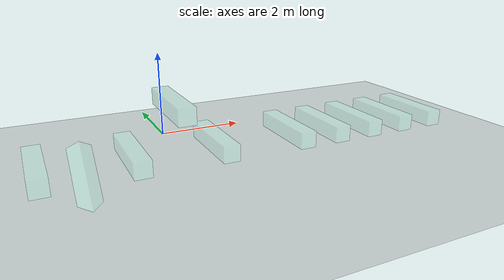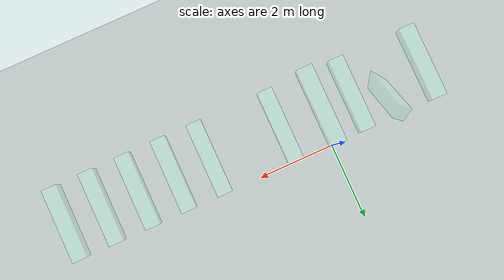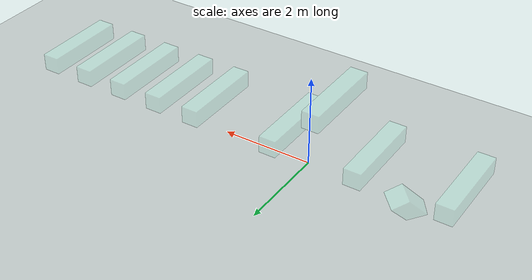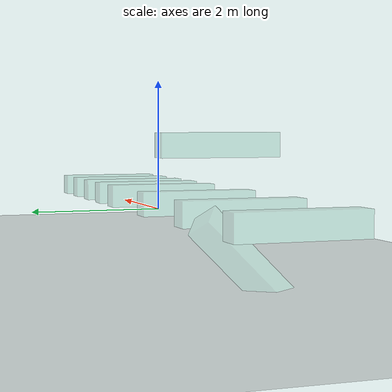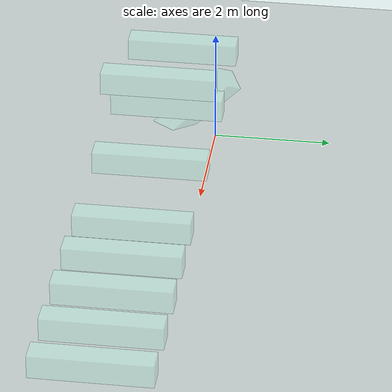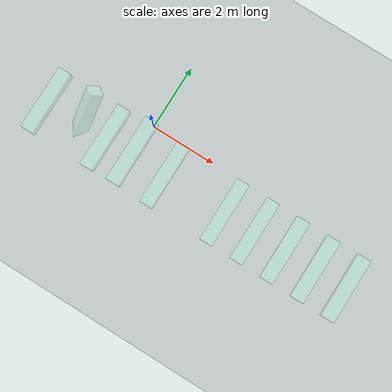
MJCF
<!-- For validating constraint dynamics:

* connect, weld, joint constraints
* collision and joint limits for ball and 1d joints
* solref, solimp
--><mujoco>
  <compiler meshdir="F:/--CodeRepo/--CodeRepo/Research/___Mujoco/mujoco/mujoco/icse27/mujoco_rl_fuzz_2.0/.cache/repos/mjx/mjx/mujoco/mjx/test_data" texturedir="F:/--CodeRepo/--CodeRepo/Research/___Mujoco/mujoco/mujoco/icse27/mujoco_rl_fuzz_2.0/.cache/repos/mjx/mjx/mujoco/mjx/test_data" assetdir="F:/--CodeRepo/--CodeRepo/Research/___Mujoco/mujoco/mujoco/icse27/mujoco_rl_fuzz_2.0/.cache/repos/mjx/mjx/mujoco/mjx/test_data"/><option timestep="0.015" impratio="1.5"/>

  <default>
    <default class="box">
      <geom type="box" size=".2" fromto="0 0 0 0 -2 0" rgba=".4 .7 .6 .3" contype="0"/>
    </default>
  </default>

  <worldbody>
    <geom pos="0 0 -1" type="plane" size="20 20 .01" condim="1"/>

    <site name="0" pos="0 0 1"/>
    <body pos="0 0 1">
      <freejoint/>
      <geom class="box"/>
      <site name="1"/>
    </body>

    <body name="anchor1" pos="-3 0 0"/>
    <body name="beam1" pos="-3 0 0">
      <joint name="joint1" type="ball" range="0 45" solreflimit="0.03 0.9" solimplimit="0.89 0.9 0.01 2.1"/>
      <geom class="box"/>
    </body>

    <body name="anchor2" pos="-1 0 0"/>
    <body name="beam2" pos="-1 0 0">
      <freejoint align="false"/>
      <geom class="box"/>
    </body>

    <body name="beam3" pos="1 0 0">
      <joint name="joint3" axis="1 0 0" type="hinge" range="-20 20" frictionloss="0.1"/>
      <geom class="box"/>
    </body>

    <body name="beam4" pos="3 0 0">
      <joint name="joint4" axis="1 0 0" type="hinge" damping="1.0"/> <!-- tests no joint range -->
      <geom class="box"/>
    </body>

    <body name="beam5" pos="-2 0 0" euler="45 45 0">
      <joint name="joint5" type="ball" range="0 45" solreflimit="-100 -1"/> <!-- test negative solref -->
      <geom class="box" contype="0" conaffinity="0"/>
    </body>

    <body name="box_condim1" pos="4 0 0">
      <freejoint align="false"/>
      <geom class="box" condim="1"/>
    </body>

    <body name="box_condim3" pos="5 0 0">
      <freejoint align="false"/>
      <geom class="box" condim="3"/>
    </body>

    <body name="box_condim4" pos="6 0 0">
      <freejoint align="false"/>
      <geom class="box" condim="4"/>
    </body>

    <body name="box_condim6" pos="7 0 0">
      <freejoint align="false"/>
      <geom class="box" condim="6"/>
    </body>
  </worldbody>

  <tendon>
    <fixed name="tendon_1" limited="true" range="-0.3 0.1" stiffness=".1" damping=".2" frictionloss="0.1">
      <joint joint="joint3" coef=".1"/>
      <joint joint="joint4" coef="-.2"/>
    </fixed>
    <fixed name="tendon_2" limited="true" range="-0.3 2" solreflimit="0.03 0.9" solimplimit="0.89 0.9 0.01 2.1">
      <joint joint="joint4" coef=".3"/>
      <joint joint="joint5" coef="-.4"/>
    </fixed>
  </tendon>

  <equality>
    <connect name="site" site1="0" site2="1"/>
    <connect name="connect" body1="anchor1" body2="beam1" anchor="1 0 -1"/>
    <weld name="weld" body1="anchor2" body2="beam2" relpose="0 0 0 1 -.3 0 0" torquescale="0.002" anchor="0 -2 0"/>
    <joint name="joint" joint1="joint3" joint2="joint4" polycoef="0.5 -1 0.1 0.15 0.2"/>
    <tendon name="tendon" tendon1="tendon_1" tendon2="tendon_2" polycoef="0.5 -1 0.1 0.15 0.2"/>
  </equality>

  <actuator>
    <position ctrlrange="-20 20" gear="500" joint="joint1" kv="0.5" name="act1"/>
    <motor gear="50000" joint="joint3" name="act2"/>
    <motor gear="75000" joint="joint4" name="act3"/>
  </actuator>

  <keyframe>
    <!-- keyframe 0: default position with some motion, zero contacts -->
    <key qpos=" -1 -1 1 1 0 0 0 1 0 0 0 -1 0 0 1 0 0 0 0 0 1 0 0 0 4 0 0 1 0 0 0 5 0 0 1 0 0 0 6 0 0 1 0 0 0 7 0 0 1 0 0 0" qvel="1 1 1 1 1 1 1 1 1 1 1 1 1 1 1 1 1 1 1 1 1 1 1 1 1 1 1 1 1 1 1 1 1 1 1 1 1 1 1 1 1 1 1 1"/>
    <!-- keyframe 1: some contacts but constraints are quadratic -->
    <key qpos=" -1 -1 1 1 0 0 0 1 0.0011 -8.2e-07 -0.0011 -0.82 1.9 -0.58 0.97 -0.14 0.17 -0.069 0.22 0.29 0.93 0.2 0.15 0.28 4.3 0.23 -0.26 0.97 0.12 0.11 0.18 5.4 0.25 -0.26 0.97 0.11 0.16 0.17 6.4 0.25 -0.26 0.97 0.11 0.16 0.17 7.4 0.25 -0.26 0.97 0.11 0.16 0.17" qvel="1 1 1 1 1 1 -0.14 3.3e-05 0.14 -0.14 -0.93 -3.6 -1.8 1 -0.57 -0.16 0.21 1.1 1 2.2 0.65 1.3 -4.2 -2.6 -5.6 0.54 1.6 2.8 -3.7 -2.3 0.7 -1.8 1.6 2.8 -3.7 -2.3 0.62 -1.8 1.6 2.8 -3.7 -2.3 0.61 -1.8"/>
    <!-- keyframe 2: some contacts and some constraints are in cone state (for elliptic) -->
    <key qpos=" -1 -1 1 1 0 0 0 1 0.0087 2.4e-07 -0.0086 -0.89 1.8 -0.77 0.98 -0.2 -0.0022 -0.026 0.19 0.33 0.86 0.32 0.064 0.38 4.4 0.36 -0.81 0.97 -0.0013 -0.0011 0.25 5.6 0.52 -0.75 0.98 -0.018 0.17 0.094 6.6 0.52 -0.75 0.98 -0.017 0.16 0.094 7.6 0.52 -0.76 0.98 -0.017 0.16 0.094" qvel="1 1 1 1 1 1 0.2 -1.8e-05 -0.2 -0.72 0.072 0.025 0.015 -4.9 0.35 -0.22 0.26 0.99 -4.6 1.7 1.1 0.52 -0.73 0.16 7.9 1 0.043 -0.042 1.3 1.6 -1.6 0.98 0.027 -0.024 1.3 1.6 -1.8 0.96 0.025 -0.022 1.3 1.6 -1.8 0.96"/>
  </keyframe>
</mujoco>
